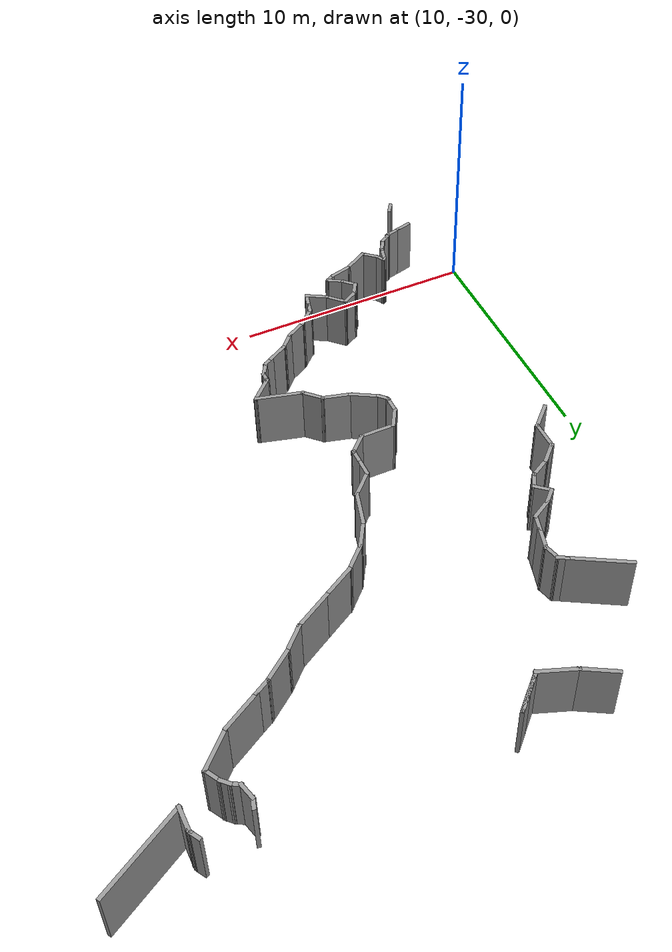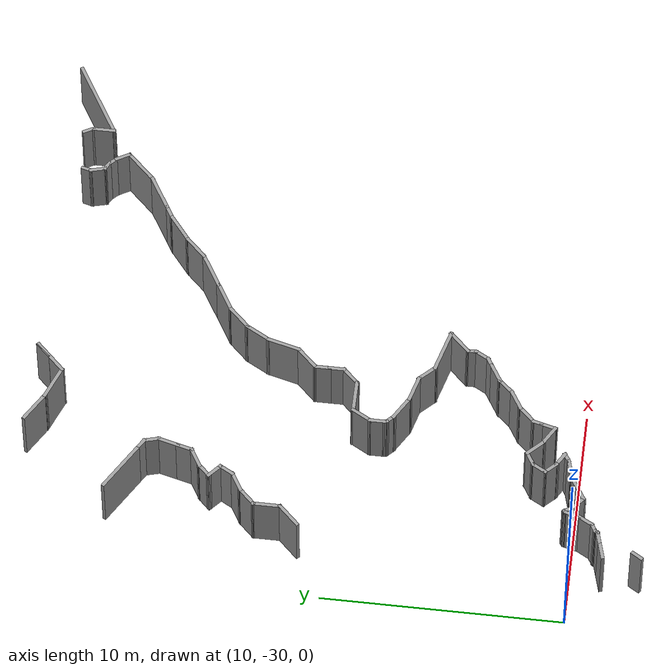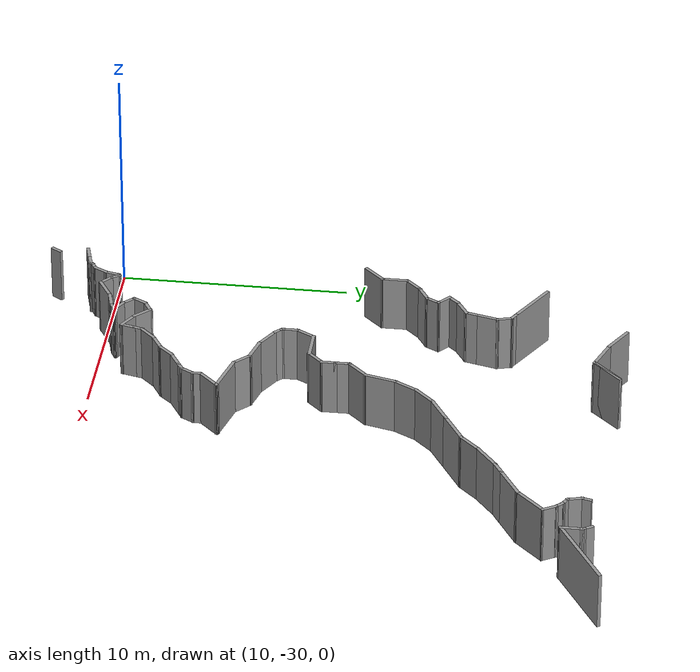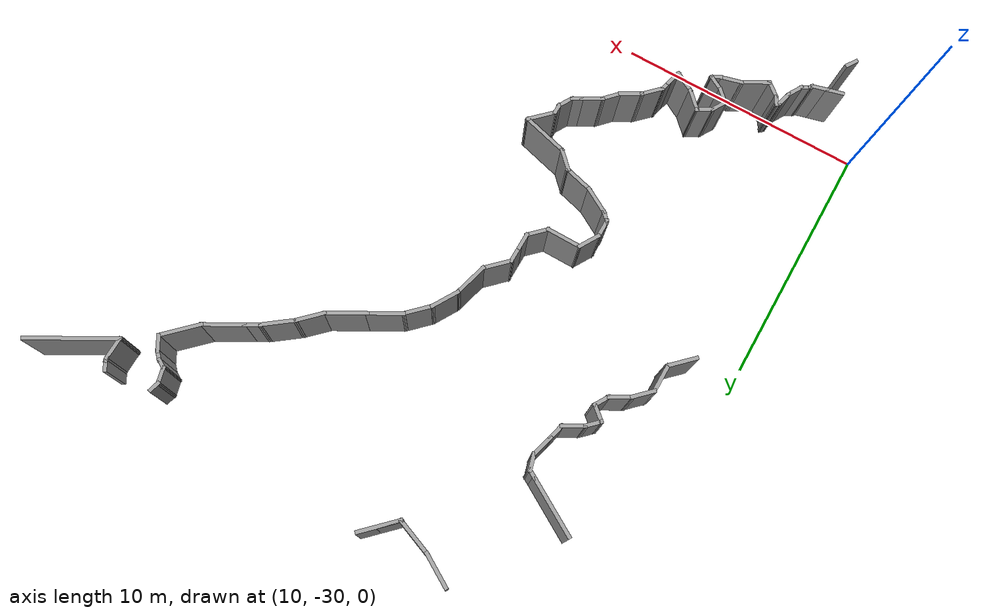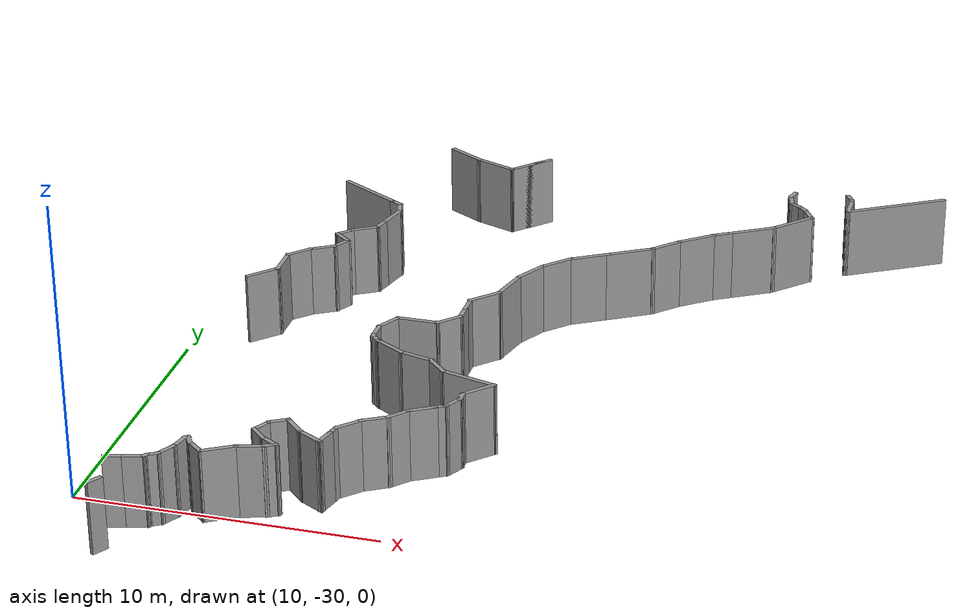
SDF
<sdf version="1.7">
 <model name="office_track1">
  <pose>2.3626 4.43866 0 0 -0 0</pose>
  <link name="Wall_157">
   <collision name="Wall_157_Collision">
    <geometry><box><size>1.25 0.15 2.5</size></box></geometry>
    <pose>0 0 1.25 0 -0 0</pose>
   </collision>
   <visual name="Wall_157_Visual">
    <pose>0 0 1.25 0 -0 0</pose>
    <geometry><box><size>1.25 0.15 2.5</size></box></geometry>
    <material>
     <script><uri>file://media/materials/scripts/gazebo.material</uri><name>Gazebo/Grey</name></script>
     <ambient>1 1 1 1</ambient>
    </material>
    <meta><layer>0</layer></meta>
   </visual>
   <pose>9.8922 -22.9119 0 0 -0 0.785398</pose>
  </link>
  <link name="Wall_158">
   <collision name="Wall_158_Collision">
    <geometry><box><size>1.25 0.15 2.5</size></box></geometry>
    <pose>0 0 1.25 0 -0 0</pose>
   </collision>
   <visual name="Wall_158_Visual">
    <pose>0 0 1.25 0 -0 0</pose>
    <geometry><box><size>1.25 0.15 2.5</size></box></geometry>
    <material>
     <script><uri>file://media/materials/scripts/gazebo.material</uri><name>Gazebo/Grey</name></script>
     <ambient>1 1 1 1</ambient>
    </material>
    <meta><layer>0</layer></meta>
   </visual>
   <pose>10.2811 -21.973 0 0 -0 1.5708</pose>
  </link>
  <link name="Wall_159">
   <collision name="Wall_159_Collision">
    <geometry><box><size>1 0.15 2.5</size></box></geometry>
    <pose>0 0 1.25 0 -0 0</pose>
   </collision>
   <visual name="Wall_159_Visual">
    <pose>0 0 1.25 0 -0 0</pose>
    <geometry><box><size>1 0.15 2.5</size></box></geometry>
    <material>
     <script><uri>file://media/materials/scripts/gazebo.material</uri><name>Gazebo/Grey</name></script>
     <ambient>1 1 1 1</ambient>
    </material>
    <meta><layer>0</layer></meta>
   </visual>
   <pose>10.5816 -21.1225 0 0 -0 0.785398</pose>
  </link>
  <link name="Wall_160">
   <collision name="Wall_160_Collision">
    <geometry><box><size>1 0.15 2.5</size></box></geometry>
    <pose>0 0 1.25 0 -0 0</pose>
   </collision>
   <visual name="Wall_160_Visual">
    <pose>0 0 1.25 0 -0 0</pose>
    <geometry><box><size>1 0.15 2.5</size></box></geometry>
    <material>
     <script><uri>file://media/materials/scripts/gazebo.material</uri><name>Gazebo/Grey</name></script>
     <ambient>1 1 1 1</ambient>
    </material>
    <meta><layer>0</layer></meta>
   </visual>
   <pose>11.2502 -20.6094 0 0 -0 0.523599</pose>
  </link>
  <link name="Wall_161">
   <collision name="Wall_161_Collision">
    <geometry><box><size>0.75 0.15 2.5</size></box></geometry>
    <pose>0 0 1.25 0 -0 0</pose>
   </collision>
   <visual name="Wall_161_Visual">
    <pose>0 0 1.25 0 -0 0</pose>
    <geometry><box><size>0.75 0.15 2.5</size></box></geometry>
    <material>
     <script><uri>file://media/materials/scripts/gazebo.material</uri><name>Gazebo/Grey</name></script>
     <ambient>1 1 1 1</ambient>
    </material>
    <meta><layer>0</layer></meta>
   </visual>
   <pose>11.7683 -20.1371 0 0 -0 1.0472</pose>
  </link>
  <link name="Wall_163">
   <collision name="Wall_163_Collision">
    <geometry><box><size>2.5 0.15 2.5</size></box></geometry>
    <pose>0 0 1.25 0 -0 0</pose>
   </collision>
   <visual name="Wall_163_Visual">
    <pose>0 0 1.25 0 -0 0</pose>
    <geometry><box><size>2.5 0.15 2.5</size></box></geometry>
    <material>
     <script><uri>file://media/materials/scripts/gazebo.material</uri><name>Gazebo/Grey</name></script>
     <ambient>1 1 1 1</ambient>
    </material>
    <meta><layer>0</layer></meta>
   </visual>
   <pose>11.4842 -15.8572 0 0 -0 -0.523599</pose>
  </link>
  <link name="Wall_164">
   <collision name="Wall_164_Collision">
    <geometry><box><size>0.5 0.15 2.5</size></box></geometry>
    <pose>0 0 1.25 0 -0 0</pose>
   </collision>
   <visual name="Wall_164_Visual">
    <pose>0 0 1.25 0 -0 0</pose>
    <geometry><box><size>0.5 0.15 2.5</size></box></geometry>
    <material>
     <script><uri>file://media/materials/scripts/gazebo.material</uri><name>Gazebo/Grey</name></script>
     <ambient>1 1 1 1</ambient>
    </material>
    <meta><layer>0</layer></meta>
   </visual>
   <pose>12.6533 -16.5322 0 0 -0 -0.523599</pose>
  </link>
  <link name="Wall_165">
   <collision name="Wall_165_Collision">
    <geometry><box><size>0.75 0.15 2.5</size></box></geometry>
    <pose>0 0 1.25 0 -0 0</pose>
   </collision>
   <visual name="Wall_165_Visual">
    <pose>0 0 1.25 0 -0 0</pose>
    <geometry><box><size>0.75 0.15 2.5</size></box></geometry>
    <material>
     <script><uri>file://media/materials/scripts/gazebo.material</uri><name>Gazebo/Grey</name></script>
     <ambient>1 1 1 1</ambient>
    </material>
    <meta><layer>0</layer></meta>
   </visual>
   <pose>12.8825 -16.9095 0 0 -0 -1.309</pose>
  </link>
  <link name="Wall_166">
   <collision name="Wall_166_Collision">
    <geometry><box><size>1 0.15 2.5</size></box></geometry>
    <pose>0 0 1.25 0 -0 0</pose>
   </collision>
   <visual name="Wall_166_Visual">
    <pose>0 0 1.25 0 -0 0</pose>
    <geometry><box><size>1 0.15 2.5</size></box></geometry>
    <material>
     <script><uri>file://media/materials/scripts/gazebo.material</uri><name>Gazebo/Grey</name></script>
     <ambient>1 1 1 1</ambient>
    </material>
    <meta><layer>0</layer></meta>
   </visual>
   <pose>12.8502 -17.6098 0 0 -0 -1.8326</pose>
  </link>
  <link name="Wall_167">
   <collision name="Wall_167_Collision">
    <geometry><box><size>0.75 0.15 2.5</size></box></geometry>
    <pose>0 0 1.25 0 -0 0</pose>
   </collision>
   <visual name="Wall_167_Visual">
    <pose>0 0 1.25 0 -0 0</pose>
    <geometry><box><size>0.75 0.15 2.5</size></box></geometry>
    <material>
     <script><uri>file://media/materials/scripts/gazebo.material</uri><name>Gazebo/Grey</name></script>
     <ambient>1 1 1 1</ambient>
    </material>
    <meta><layer>0</layer></meta>
   </visual>
   <pose>12.6625 -18.3101 0 0 -0 -1.8326</pose>
  </link>
  <link name="Wall_168">
   <collision name="Wall_168_Collision">
    <geometry><box><size>1 0.15 2.5</size></box></geometry>
    <pose>0 0 1.25 0 -0 0</pose>
   </collision>
   <visual name="Wall_168_Visual">
    <pose>0 0 1.25 0 -0 0</pose>
    <geometry><box><size>1 0.15 2.5</size></box></geometry>
    <material>
     <script><uri>file://media/materials/scripts/gazebo.material</uri><name>Gazebo/Grey</name></script>
     <ambient>1 1 1 1</ambient>
    </material>
    <meta><layer>0</layer></meta>
   </visual>
   <pose>12.2168 -18.8124 0 0 -0 -2.61799</pose>
  </link>
  <link name="Wall_169">
   <collision name="Wall_169_Collision">
    <geometry><box><size>0.75 0.15 2.5</size></box></geometry>
    <pose>0 0 1.25 0 -0 0</pose>
   </collision>
   <visual name="Wall_169_Visual">
    <pose>0 0 1.25 0 -0 0</pose>
    <geometry><box><size>0.75 0.15 2.5</size></box></geometry>
    <material>
     <script><uri>file://media/materials/scripts/gazebo.material</uri><name>Gazebo/Grey</name></script>
     <ambient>1 1 1 1</ambient>
    </material>
    <meta><layer>0</layer></meta>
   </visual>
   <pose>11.6366 -19.237 0 0 -0 -2.35619</pose>
  </link>
  <link name="Wall_170">
   <collision name="Wall_170_Collision">
    <geometry><box><size>0.803548 0.15 2.5</size></box></geometry>
    <pose>0 0 1.25 0 -0 0</pose>
   </collision>
   <visual name="Wall_170_Visual">
    <pose>0 0 1.25 0 -0 0</pose>
    <geometry><box><size>0.803548 0.15 2.5</size></box></geometry>
    <material>
     <script><uri>file://media/materials/scripts/gazebo.material</uri><name>Gazebo/Grey</name></script>
     <ambient>1 1 1 1</ambient>
    </material>
    <meta><layer>0</layer></meta>
   </visual>
   <pose>11.6714 -19.6632 0 0 -0 -0.714368</pose>
  </link>
  <link name="Wall_176">
   <collision name="Wall_176_Collision">
    <geometry><box><size>1.75 0.15 2.5</size></box></geometry>
    <pose>0 0 1.25 0 -0 0</pose>
   </collision>
   <visual name="Wall_176_Visual">
    <pose>0 0 1.25 0 -0 0</pose>
    <geometry><box><size>1.75 0.15 2.5</size></box></geometry>
    <material>
     <script><uri>file://media/materials/scripts/gazebo.material</uri><name>Gazebo/Grey</name></script>
     <ambient>1 1 1 1</ambient>
    </material>
    <meta><layer>0</layer></meta>
   </visual>
   <pose>16.4542 -12.203 0 0 -0 0.785398</pose>
  </link>
  <link name="Wall_181">
   <collision name="Wall_181_Collision">
    <geometry><box><size>1.5 0.15 2.5</size></box></geometry>
    <pose>0 0 1.25 0 -0 0</pose>
   </collision>
   <visual name="Wall_181_Visual">
    <pose>0 0 1.25 0 -0 0</pose>
    <geometry><box><size>1.5 0.15 2.5</size></box></geometry>
    <material>
     <script><uri>file://media/materials/scripts/gazebo.material</uri><name>Gazebo/Grey</name></script>
     <ambient>1 1 1 1</ambient>
    </material>
    <meta><layer>0</layer></meta>
   </visual>
   <pose>13.9348 -11.9171 0 0 -0 -0.523599</pose>
  </link>
  <link name="Wall_182">
   <collision name="Wall_182_Collision">
    <geometry><box><size>1.61252 0.15 2.5</size></box></geometry>
    <pose>0 0 1.25 0 -0 0</pose>
   </collision>
   <visual name="Wall_182_Visual">
    <pose>0 0 1.25 0 -0 0</pose>
    <geometry><box><size>1.61252 0.15 2.5</size></box></geometry>
    <material>
     <script><uri>file://media/materials/scripts/gazebo.material</uri><name>Gazebo/Grey</name></script>
     <ambient>1 1 1 1</ambient>
    </material>
    <meta><layer>0</layer></meta>
   </visual>
   <pose>15.2039 -12.5116 0 0 -0 -0.359135</pose>
  </link>
  <link name="Wall_189">
   <collision name="Wall_189_Collision">
    <geometry><box><size>1.75 0.15 2.5</size></box></geometry>
    <pose>0 0 1.25 0 -0 0</pose>
   </collision>
   <visual name="Wall_189_Visual">
    <pose>0 0 1.25 0 -0 0</pose>
    <geometry><box><size>1.75 0.15 2.5</size></box></geometry>
    <material>
     <script><uri>file://media/materials/scripts/gazebo.material</uri><name>Gazebo/Grey</name></script>
     <ambient>1 1 1 1</ambient>
    </material>
    <meta><layer>0</layer></meta>
   </visual>
   <pose>16.4542 -12.203 0 0 -0 -2.35619</pose>
  </link>
  <link name="Wall_358">
   <collision name="Wall_358_Collision">
    <geometry><box><size>3.75 0.15 2.5</size></box></geometry>
    <pose>0 0 1.25 0 -0 0</pose>
   </collision>
   <visual name="Wall_358_Visual">
    <pose>0 0 1.25 0 -0 0</pose>
    <geometry><box><size>3.75 0.15 2.5</size></box></geometry>
    <material>
     <script><uri>file://media/materials/scripts/gazebo.material</uri><name>Gazebo/Grey</name></script>
     <ambient>1 1 1 1</ambient>
    </material>
    <meta><layer>0</layer></meta>
   </visual>
   <pose>29.8467 -12.2922 0 0 -0 -2.61799</pose>
  </link>
  <link name="Wall_359">
   <collision name="Wall_359_Collision">
    <geometry><box><size>1 0.15 2.5</size></box></geometry>
    <pose>0 0 1.25 0 -0 0</pose>
   </collision>
   <visual name="Wall_359_Visual">
    <pose>0 0 1.25 0 -0 0</pose>
    <geometry><box><size>1 0.15 2.5</size></box></geometry>
    <material>
     <script><uri>file://media/materials/scripts/gazebo.material</uri><name>Gazebo/Grey</name></script>
     <ambient>1 1 1 1</ambient>
    </material>
    <meta><layer>0</layer></meta>
   </visual>
   <pose>28.2878 -12.7672 0 0 -0 1.5708</pose>
  </link>
  <link name="Wall_360">
   <collision name="Wall_360_Collision">
    <geometry><box><size>0.25 0.15 2.5</size></box></geometry>
    <pose>0 0 1.25 0 -0 0</pose>
   </collision>
   <visual name="Wall_360_Visual">
    <pose>0 0 1.25 0 -0 0</pose>
    <geometry><box><size>0.25 0.15 2.5</size></box></geometry>
    <material>
     <script><uri>file://media/materials/scripts/gazebo.material</uri><name>Gazebo/Grey</name></script>
     <ambient>1 1 1 1</ambient>
    </material>
    <meta><layer>0</layer></meta>
   </visual>
   <pose>28.2749 -12.294 0 0 -0 1.8326</pose>
  </link>
  <link name="Wall_361">
   <collision name="Wall_361_Collision">
    <geometry><box><size>0.5 0.15 2.5</size></box></geometry>
    <pose>0 0 1.25 0 -0 0</pose>
   </collision>
   <visual name="Wall_361_Visual">
    <pose>0 0 1.25 0 -0 0</pose>
    <geometry><box><size>0.5 0.15 2.5</size></box></geometry>
    <material>
     <script><uri>file://media/materials/scripts/gazebo.material</uri><name>Gazebo/Grey</name></script>
     <ambient>1 1 1 1</ambient>
    </material>
    <meta><layer>0</layer></meta>
   </visual>
   <pose>28.1745 -12.0941 0 0 -0 2.0944</pose>
  </link>
  <link name="Wall_366">
   <collision name="Wall_366_Collision">
    <geometry><box><size>0.5 0.15 2.5</size></box></geometry>
    <pose>0 0 1.25 0 -0 0</pose>
   </collision>
   <visual name="Wall_366_Visual">
    <pose>0 0 1.25 0 -0 0</pose>
    <geometry><box><size>0.5 0.15 2.5</size></box></geometry>
    <material>
     <script><uri>file://media/materials/scripts/gazebo.material</uri><name>Gazebo/Grey</name></script>
     <ambient>1 1 1 1</ambient>
    </material>
    <meta><layer>0</layer></meta>
   </visual>
   <pose>26.1583 -12.3363 0 0 -0 -1.8326</pose>
  </link>
  <link name="Wall_367">
   <collision name="Wall_367_Collision">
    <geometry><box><size>0.75 0.15 2.5</size></box></geometry>
    <pose>0 0 1.25 0 -0 0</pose>
   </collision>
   <visual name="Wall_367_Visual">
    <pose>0 0 1.25 0 -0 0</pose>
    <geometry><box><size>0.75 0.15 2.5</size></box></geometry>
    <material>
     <script><uri>file://media/materials/scripts/gazebo.material</uri><name>Gazebo/Grey</name></script>
     <ambient>1 1 1 1</ambient>
    </material>
    <meta><layer>0</layer></meta>
   </visual>
   <pose>26.1907 -12.7952 0 0 -0 -1.309</pose>
  </link>
  <link name="Wall_368">
   <collision name="Wall_368_Collision">
    <geometry><box><size>0.5 0.15 2.5</size></box></geometry>
    <pose>0 0 1.25 0 -0 0</pose>
   </collision>
   <visual name="Wall_368_Visual">
    <pose>0 0 1.25 0 -0 0</pose>
    <geometry><box><size>0.5 0.15 2.5</size></box></geometry>
    <material>
     <script><uri>file://media/materials/scripts/gazebo.material</uri><name>Gazebo/Grey</name></script>
     <ambient>1 1 1 1</ambient>
    </material>
    <meta><layer>0</layer></meta>
   </visual>
   <pose>26.4199 -13.1724 0 0 -0 -0.523599</pose>
  </link>
  <link name="Wall_369">
   <collision name="Wall_369_Collision">
    <geometry><box><size>0.5 0.15 2.5</size></box></geometry>
    <pose>0 0 1.25 0 -0 0</pose>
   </collision>
   <visual name="Wall_369_Visual">
    <pose>0 0 1.25 0 -0 0</pose>
    <geometry><box><size>0.5 0.15 2.5</size></box></geometry>
    <material>
     <script><uri>file://media/materials/scripts/gazebo.material</uri><name>Gazebo/Grey</name></script>
     <ambient>1 1 1 1</ambient>
    </material>
    <meta><layer>0</layer></meta>
   </visual>
   <pose>26.6952 -13.3837 0 0 -0 -0.785398</pose>
  </link>
  <link name="Wall_371">
   <collision name="Wall_371_Collision">
    <geometry><box><size>0.75 0.15 2.5</size></box></geometry>
    <pose>0 0 1.25 0 -0 0</pose>
   </collision>
   <visual name="Wall_371_Visual">
    <pose>0 0 1.25 0 -0 0</pose>
    <geometry><box><size>0.75 0.15 2.5</size></box></geometry>
    <material>
     <script><uri>file://media/materials/scripts/gazebo.material</uri><name>Gazebo/Grey</name></script>
     <ambient>1 1 1 1</ambient>
    </material>
    <meta><layer>0</layer></meta>
   </visual>
   <pose>26.9689 -13.7672 0 0 -0 -1.0472</pose>
  </link>
  <link name="Wall_372">
   <collision name="Wall_372_Collision">
    <geometry><box><size>1.75 0.15 2.5</size></box></geometry>
    <pose>0 0 1.25 0 -0 0</pose>
   </collision>
   <visual name="Wall_372_Visual">
    <pose>0 0 1.25 0 -0 0</pose>
    <geometry><box><size>1.75 0.15 2.5</size></box></geometry>
    <material>
     <script><uri>file://media/materials/scripts/gazebo.material</uri><name>Gazebo/Grey</name></script>
     <ambient>1 1 1 1</ambient>
    </material>
    <meta><layer>0</layer></meta>
   </visual>
   <pose>26.5532 -14.5927 0 0 -0 -2.35619</pose>
  </link>
  <link name="Wall_373">
   <collision name="Wall_373_Collision">
    <geometry><box><size>1.75 0.15 2.5</size></box></geometry>
    <pose>0 0 1.25 0 -0 0</pose>
   </collision>
   <visual name="Wall_373_Visual">
    <pose>0 0 1.25 0 -0 0</pose>
    <geometry><box><size>1.75 0.15 2.5</size></box></geometry>
    <material>
     <script><uri>file://media/materials/scripts/gazebo.material</uri><name>Gazebo/Grey</name></script>
     <ambient>1 1 1 1</ambient>
    </material>
    <meta><layer>0</layer></meta>
   </visual>
   <pose>25.2947 -15.5584 0 0 -0 -2.61799</pose>
  </link>
  <link name="Wall_374">
   <collision name="Wall_374_Collision">
    <geometry><box><size>0.75 0.15 2.5</size></box></geometry>
    <pose>0 0 1.25 0 -0 0</pose>
   </collision>
   <visual name="Wall_374_Visual">
    <pose>0 0 1.25 0 -0 0</pose>
    <geometry><box><size>0.75 0.15 2.5</size></box></geometry>
    <material>
     <script><uri>file://media/materials/scripts/gazebo.material</uri><name>Gazebo/Grey</name></script>
     <ambient>1 1 1 1</ambient>
    </material>
    <meta><layer>0</layer></meta>
   </visual>
   <pose>24.3421 -16.1084 0 0 -0 -2.61799</pose>
  </link>
  <link name="Wall_376">
   <collision name="Wall_376_Collision">
    <geometry><box><size>1.5 0.15 2.5</size></box></geometry>
    <pose>0 0 1.25 0 -0 0</pose>
   </collision>
   <visual name="Wall_376_Visual">
    <pose>0 0 1.25 0 -0 0</pose>
    <geometry><box><size>1.5 0.15 2.5</size></box></geometry>
    <material>
     <script><uri>file://media/materials/scripts/gazebo.material</uri><name>Gazebo/Grey</name></script>
     <ambient>1 1 1 1</ambient>
    </material>
    <meta><layer>0</layer></meta>
   </visual>
   <pose>18.207 -21.6949 0 0 -0 1.309</pose>
  </link>
  <link name="Wall_377">
   <collision name="Wall_377_Collision">
    <geometry><box><size>1.25 0.15 2.5</size></box></geometry>
    <pose>0 0 1.25 0 -0 0</pose>
   </collision>
   <visual name="Wall_377_Visual">
    <pose>0 0 1.25 0 -0 0</pose>
    <geometry><box><size>1.25 0.15 2.5</size></box></geometry>
    <material>
     <script><uri>file://media/materials/scripts/gazebo.material</uri><name>Gazebo/Grey</name></script>
     <ambient>1 1 1 1</ambient>
    </material>
    <meta><layer>0</layer></meta>
   </visual>
   <pose>18.6567 -20.5666 0 0 -0 1.0472</pose>
  </link>
  <link name="Wall_378">
   <collision name="Wall_378_Collision">
    <geometry><box><size>1.25 0.15 2.5</size></box></geometry>
    <pose>0 0 1.25 0 -0 0</pose>
   </collision>
   <visual name="Wall_378_Visual">
    <pose>0 0 1.25 0 -0 0</pose>
    <geometry><box><size>1.25 0.15 2.5</size></box></geometry>
    <material>
     <script><uri>file://media/materials/scripts/gazebo.material</uri><name>Gazebo/Grey</name></script>
     <ambient>1 1 1 1</ambient>
    </material>
    <meta><layer>0</layer></meta>
   </visual>
   <pose>19.3206 -19.7014 0 0 -0 0.785398</pose>
  </link>
  <link name="Wall_379">
   <collision name="Wall_379_Collision">
    <geometry><box><size>1.5 0.15 2.5</size></box></geometry>
    <pose>0 0 1.25 0 -0 0</pose>
   </collision>
   <visual name="Wall_379_Visual">
    <pose>0 0 1.25 0 -0 0</pose>
    <geometry><box><size>1.5 0.15 2.5</size></box></geometry>
    <material>
     <script><uri>file://media/materials/scripts/gazebo.material</uri><name>Gazebo/Grey</name></script>
     <ambient>1 1 1 1</ambient>
    </material>
    <meta><layer>0</layer></meta>
   </visual>
   <pose>20.294 -18.975 0 0 -0 0.523599</pose>
  </link>
  <link name="Wall_380">
   <collision name="Wall_380_Collision">
    <geometry><box><size>1.75 0.15 2.5</size></box></geometry>
    <pose>0 0 1.25 0 -0 0</pose>
   </collision>
   <visual name="Wall_380_Visual">
    <pose>0 0 1.25 0 -0 0</pose>
    <geometry><box><size>1.75 0.15 2.5</size></box></geometry>
    <material>
     <script><uri>file://media/materials/scripts/gazebo.material</uri><name>Gazebo/Grey</name></script>
     <ambient>1 1 1 1</ambient>
    </material>
    <meta><layer>0</layer></meta>
   </visual>
   <pose>21.5714 -18.2375 0 0 -0 0.523599</pose>
  </link>
  <link name="Wall_381">
   <collision name="Wall_381_Collision">
    <geometry><box><size>1.25 0.15 2.5</size></box></geometry>
    <pose>0 0 1.25 0 -0 0</pose>
   </collision>
   <visual name="Wall_381_Visual">
    <pose>0 0 1.25 0 -0 0</pose>
    <geometry><box><size>1.25 0.15 2.5</size></box></geometry>
    <material>
     <script><uri>file://media/materials/scripts/gazebo.material</uri><name>Gazebo/Grey</name></script>
     <ambient>1 1 1 1</ambient>
    </material>
    <meta><layer>0</layer></meta>
   </visual>
   <pose>22.6532 -17.4486 0 0 -0 0.785398</pose>
  </link>
  <link name="Wall_382">
   <collision name="Wall_382_Collision">
    <geometry><box><size>1.46302 0.15 2.5</size></box></geometry>
    <pose>0 0 1.25 0 -0 0</pose>
   </collision>
   <visual name="Wall_382_Visual">
    <pose>0 0 1.25 0 -0 0</pose>
    <geometry><box><size>1.46302 0.15 2.5</size></box></geometry>
    <material>
     <script><uri>file://media/materials/scripts/gazebo.material</uri><name>Gazebo/Grey</name></script>
     <ambient>1 1 1 1</ambient>
    </material>
    <meta><layer>0</layer></meta>
   </visual>
   <pose>23.5622 -16.659 0 0 -0 0.656355</pose>
  </link>
  <link name="Wall_384">
   <collision name="Wall_384_Collision">
    <geometry><box><size>1.25 0.15 2.5</size></box></geometry>
    <pose>0 0 1.25 0 -0 0</pose>
   </collision>
   <visual name="Wall_384_Visual">
    <pose>0 0 1.25 0 -0 0</pose>
    <geometry><box><size>1.25 0.15 2.5</size></box></geometry>
    <material>
     <script><uri>file://media/materials/scripts/gazebo.material</uri><name>Gazebo/Grey</name></script>
     <ambient>1 1 1 1</ambient>
    </material>
    <meta><layer>0</layer></meta>
   </visual>
   <pose>17.6433 -22.7358 0 0 -0 -2.35619</pose>
  </link>
  <link name="Wall_385">
   <collision name="Wall_385_Collision">
    <geometry><box><size>0.75 0.15 2.5</size></box></geometry>
    <pose>0 0 1.25 0 -0 0</pose>
   </collision>
   <visual name="Wall_385_Visual">
    <pose>0 0 1.25 0 -0 0</pose>
    <geometry><box><size>0.75 0.15 2.5</size></box></geometry>
    <material>
     <script><uri>file://media/materials/scripts/gazebo.material</uri><name>Gazebo/Grey</name></script>
     <ambient>1 1 1 1</ambient>
    </material>
    <meta><layer>0</layer></meta>
   </visual>
   <pose>17.2544 -23.4247 0 0 -0 -1.5708</pose>
  </link>
  <link name="Wall_386">
   <collision name="Wall_386_Collision">
    <geometry><box><size>0.75 0.15 2.5</size></box></geometry>
    <pose>0 0 1.25 0 -0 0</pose>
   </collision>
   <visual name="Wall_386_Visual">
    <pose>0 0 1.25 0 -0 0</pose>
    <geometry><box><size>0.75 0.15 2.5</size></box></geometry>
    <material>
     <script><uri>file://media/materials/scripts/gazebo.material</uri><name>Gazebo/Grey</name></script>
     <ambient>1 1 1 1</ambient>
    </material>
    <meta><layer>0</layer></meta>
   </visual>
   <pose>17.2544 -24.0247 0 0 -0 -1.5708</pose>
  </link>
  <link name="Wall_387">
   <collision name="Wall_387_Collision">
    <geometry><box><size>1 0.15 2.5</size></box></geometry>
    <pose>0 0 1.25 0 -0 0</pose>
   </collision>
   <visual name="Wall_387_Visual">
    <pose>0 0 1.25 0 -0 0</pose>
    <geometry><box><size>1 0.15 2.5</size></box></geometry>
    <material>
     <script><uri>file://media/materials/scripts/gazebo.material</uri><name>Gazebo/Grey</name></script>
     <ambient>1 1 1 1</ambient>
    </material>
    <meta><layer>0</layer></meta>
   </visual>
   <pose>16.9539 -24.6253 0 0 -0 -2.35619</pose>
  </link>
  <link name="Wall_388">
   <collision name="Wall_388_Collision">
    <geometry><box><size>1.5 0.15 2.5</size></box></geometry>
    <pose>0 0 1.25 0 -0 0</pose>
   </collision>
   <visual name="Wall_388_Visual">
    <pose>0 0 1.25 0 -0 0</pose>
    <geometry><box><size>1.5 0.15 2.5</size></box></geometry>
    <material>
     <script><uri>file://media/materials/scripts/gazebo.material</uri><name>Gazebo/Grey</name></script>
     <ambient>1 1 1 1</ambient>
    </material>
    <meta><layer>0</layer></meta>
   </visual>
   <pose>15.9784 -24.9258 0 0 -0 3.14159</pose>
  </link>
  <link name="Wall_389">
   <collision name="Wall_389_Collision">
    <geometry><box><size>1 0.15 2.5</size></box></geometry>
    <pose>0 0 1.25 0 -0 0</pose>
   </collision>
   <visual name="Wall_389_Visual">
    <pose>0 0 1.25 0 -0 0</pose>
    <geometry><box><size>1 0.15 2.5</size></box></geometry>
    <material>
     <script><uri>file://media/materials/scripts/gazebo.material</uri><name>Gazebo/Grey</name></script>
     <ambient>1 1 1 1</ambient>
    </material>
    <meta><layer>0</layer></meta>
   </visual>
   <pose>15.0909 -25.2938 0 0 -0 -2.0944</pose>
  </link>
  <link name="Wall_390">
   <collision name="Wall_390_Collision">
    <geometry><box><size>0.75 0.15 2.5</size></box></geometry>
    <pose>0 0 1.25 0 -0 0</pose>
   </collision>
   <visual name="Wall_390_Visual">
    <pose>0 0 1.25 0 -0 0</pose>
    <geometry><box><size>0.75 0.15 2.5</size></box></geometry>
    <material>
     <script><uri>file://media/materials/scripts/gazebo.material</uri><name>Gazebo/Grey</name></script>
     <ambient>1 1 1 1</ambient>
    </material>
    <meta><layer>0</layer></meta>
   </visual>
   <pose>14.8784 -25.9619 0 0 -0 -1.5708</pose>
  </link>
  <link name="Wall_391">
   <collision name="Wall_391_Collision">
    <geometry><box><size>0.25 0.15 2.5</size></box></geometry>
    <pose>0 0 1.25 0 -0 0</pose>
   </collision>
   <visual name="Wall_391_Visual">
    <pose>0 0 1.25 0 -0 0</pose>
    <geometry><box><size>0.25 0.15 2.5</size></box></geometry>
    <material>
     <script><uri>file://media/materials/scripts/gazebo.material</uri><name>Gazebo/Grey</name></script>
     <ambient>1 1 1 1</ambient>
    </material>
    <meta><layer>0</layer></meta>
   </visual>
   <pose>14.8913 -26.3102 0 0 -0 -1.309</pose>
  </link>
  <link name="Wall_392">
   <collision name="Wall_392_Collision">
    <geometry><box><size>0.5 0.15 2.5</size></box></geometry>
    <pose>0 0 1.25 0 -0 0</pose>
   </collision>
   <visual name="Wall_392_Visual">
    <pose>0 0 1.25 0 -0 0</pose>
    <geometry><box><size>0.5 0.15 2.5</size></box></geometry>
    <material>
     <script><uri>file://media/materials/scripts/gazebo.material</uri><name>Gazebo/Grey</name></script>
     <ambient>1 1 1 1</ambient>
    </material>
    <meta><layer>0</layer></meta>
   </visual>
   <pose>15.028 -26.4822 0 0 -0 -0.785398</pose>
  </link>
  <link name="Wall_393">
   <collision name="Wall_393_Collision">
    <geometry><box><size>1.25 0.15 2.5</size></box></geometry>
    <pose>0 0 1.25 0 -0 0</pose>
   </collision>
   <visual name="Wall_393_Visual">
    <pose>0 0 1.25 0 -0 0</pose>
    <geometry><box><size>1.25 0.15 2.5</size></box></geometry>
    <material>
     <script><uri>file://media/materials/scripts/gazebo.material</uri><name>Gazebo/Grey</name></script>
     <ambient>1 1 1 1</ambient>
    </material>
    <meta><layer>0</layer></meta>
   </visual>
   <pose>15.6281 -26.881 0 0 -0 -0.523599</pose>
  </link>
  <link name="Wall_394">
   <collision name="Wall_394_Collision">
    <geometry><box><size>1.25 0.15 2.5</size></box></geometry>
    <pose>0 0 1.25 0 -0 0</pose>
   </collision>
   <visual name="Wall_394_Visual">
    <pose>0 0 1.25 0 -0 0</pose>
    <geometry><box><size>1.25 0.15 2.5</size></box></geometry>
    <material>
     <script><uri>file://media/materials/scripts/gazebo.material</uri><name>Gazebo/Grey</name></script>
     <ambient>1 1 1 1</ambient>
    </material>
    <meta><layer>0</layer></meta>
   </visual>
   <pose>16.6356 -27.2983 0 0 -0 -0.261799</pose>
  </link>
  <link name="Wall_395">
   <collision name="Wall_395_Collision">
    <geometry><box><size>1 0.15 2.5</size></box></geometry>
    <pose>0 0 1.25 0 -0 0</pose>
   </collision>
   <visual name="Wall_395_Visual">
    <pose>0 0 1.25 0 -0 0</pose>
    <geometry><box><size>1 0.15 2.5</size></box></geometry>
    <material>
     <script><uri>file://media/materials/scripts/gazebo.material</uri><name>Gazebo/Grey</name></script>
     <ambient>1 1 1 1</ambient>
    </material>
    <meta><layer>0</layer></meta>
   </visual>
   <pose>17.4674 -27.7412 0 0 -0 -0.785398</pose>
  </link>
  <link name="Wall_396">
   <collision name="Wall_396_Collision">
    <geometry><box><size>2 0.15 2.5</size></box></geometry>
    <pose>0 0 1.25 0 -0 0</pose>
   </collision>
   <visual name="Wall_396_Visual">
    <pose>0 0 1.25 0 -0 0</pose>
    <geometry><box><size>2 0.15 2.5</size></box></geometry>
    <material>
     <script><uri>file://media/materials/scripts/gazebo.material</uri><name>Gazebo/Grey</name></script>
     <ambient>1 1 1 1</ambient>
    </material>
    <meta><layer>0</layer></meta>
   </visual>
   <pose>18.6614 -28.2811 0 0 -0 -0.261799</pose>
  </link>
  <link name="Wall_397">
   <collision name="Wall_397_Collision">
    <geometry><box><size>1.25 0.15 2.5</size></box></geometry>
    <pose>0 0 1.25 0 -0 0</pose>
   </collision>
   <visual name="Wall_397_Visual">
    <pose>0 0 1.25 0 -0 0</pose>
    <geometry><box><size>1.25 0.15 2.5</size></box></geometry>
    <material>
     <script><uri>file://media/materials/scripts/gazebo.material</uri><name>Gazebo/Grey</name></script>
     <ambient>1 1 1 1</ambient>
    </material>
    <meta><layer>0</layer></meta>
   </visual>
   <pose>19.166 -28.9094 0 0 -0 -2.35619</pose>
  </link>
  <link name="Wall_398">
   <collision name="Wall_398_Collision">
    <geometry><box><size>0.5 0.15 2.5</size></box></geometry>
    <pose>0 0 1.25 0 -0 0</pose>
   </collision>
   <visual name="Wall_398_Visual">
    <pose>0 0 1.25 0 -0 0</pose>
    <geometry><box><size>0.5 0.15 2.5</size></box></geometry>
    <material>
     <script><uri>file://media/materials/scripts/gazebo.material</uri><name>Gazebo/Grey</name></script>
     <ambient>1 1 1 1</ambient>
    </material>
    <meta><layer>0</layer></meta>
   </visual>
   <pose>18.7771 -29.4734 0 0 -0 -1.5708</pose>
  </link>
  <link name="Wall_399">
   <collision name="Wall_399_Collision">
    <geometry><box><size>0.75 0.15 2.5</size></box></geometry>
    <pose>0 0 1.25 0 -0 0</pose>
   </collision>
   <visual name="Wall_399_Visual">
    <pose>0 0 1.25 0 -0 0</pose>
    <geometry><box><size>0.75 0.15 2.5</size></box></geometry>
    <material>
     <script><uri>file://media/materials/scripts/gazebo.material</uri><name>Gazebo/Grey</name></script>
     <ambient>1 1 1 1</ambient>
    </material>
    <meta><layer>0</layer></meta>
   </visual>
   <pose>18.6271 -29.9082 0 0 -0 -2.0944</pose>
  </link>
  <link name="Wall_400">
   <collision name="Wall_400_Collision">
    <geometry><box><size>0.5 0.15 2.5</size></box></geometry>
    <pose>0 0 1.25 0 -0 0</pose>
   </collision>
   <visual name="Wall_400_Visual">
    <pose>0 0 1.25 0 -0 0</pose>
    <geometry><box><size>0.5 0.15 2.5</size></box></geometry>
    <material>
     <script><uri>file://media/materials/scripts/gazebo.material</uri><name>Gazebo/Grey</name></script>
     <ambient>1 1 1 1</ambient>
    </material>
    <meta><layer>0</layer></meta>
   </visual>
   <pose>18.3255 -30.2555 0 0 -0 -2.61799</pose>
  </link>
  <link name="Wall_401">
   <collision name="Wall_401_Collision">
    <geometry><box><size>1 0.15 2.5</size></box></geometry>
    <pose>0 0 1.25 0 -0 0</pose>
   </collision>
   <visual name="Wall_401_Visual">
    <pose>0 0 1.25 0 -0 0</pose>
    <geometry><box><size>1 0.15 2.5</size></box></geometry>
    <material>
     <script><uri>file://media/materials/scripts/gazebo.material</uri><name>Gazebo/Grey</name></script>
     <ambient>1 1 1 1</ambient>
    </material>
    <meta><layer>0</layer></meta>
   </visual>
   <pose>17.8059 -30.5555 0 0 -0 -2.61799</pose>
  </link>
  <link name="Wall_403">
   <collision name="Wall_403_Collision">
    <geometry><box><size>1.25 0.15 2.5</size></box></geometry>
    <pose>0 0 1.25 0 -0 0</pose>
   </collision>
   <visual name="Wall_403_Visual">
    <pose>0 0 1.25 0 -0 0</pose>
    <geometry><box><size>1.25 0.15 2.5</size></box></geometry>
    <material>
     <script><uri>file://media/materials/scripts/gazebo.material</uri><name>Gazebo/Grey</name></script>
     <ambient>1 1 1 1</ambient>
    </material>
    <meta><layer>0</layer></meta>
   </visual>
   <pose>12.5445 -34.4374 0 0 -0 0.523599</pose>
  </link>
  <link name="Wall_404">
   <collision name="Wall_404_Collision">
    <geometry><box><size>1 0.15 2.5</size></box></geometry>
    <pose>0 0 1.25 0 -0 0</pose>
   </collision>
   <visual name="Wall_404_Visual">
    <pose>0 0 1.25 0 -0 0</pose>
    <geometry><box><size>1 0.15 2.5</size></box></geometry>
    <material>
     <script><uri>file://media/materials/scripts/gazebo.material</uri><name>Gazebo/Grey</name></script>
     <ambient>1 1 1 1</ambient>
    </material>
    <meta><layer>0</layer></meta>
   </visual>
   <pose>13.4313 -34.0524 0 0 -0 0.261799</pose>
  </link>
  <link name="Wall_405">
   <collision name="Wall_405_Collision">
    <geometry><box><size>0.5 0.15 2.5</size></box></geometry>
    <pose>0 0 1.25 0 -0 0</pose>
   </collision>
   <visual name="Wall_405_Visual">
    <pose>0 0 1.25 0 -0 0</pose>
    <geometry><box><size>0.5 0.15 2.5</size></box></geometry>
    <material>
     <script><uri>file://media/materials/scripts/gazebo.material</uri><name>Gazebo/Grey</name></script>
     <ambient>1 1 1 1</ambient>
    </material>
    <meta><layer>0</layer></meta>
   </visual>
   <pose>13.9934 -33.8549 0 0 -0 0.523599</pose>
  </link>
  <link name="Wall_406">
   <collision name="Wall_406_Collision">
    <geometry><box><size>0.75 0.15 2.5</size></box></geometry>
    <pose>0 0 1.25 0 -0 0</pose>
   </collision>
   <visual name="Wall_406_Visual">
    <pose>0 0 1.25 0 -0 0</pose>
    <geometry><box><size>0.75 0.15 2.5</size></box></geometry>
    <material>
     <script><uri>file://media/materials/scripts/gazebo.material</uri><name>Gazebo/Grey</name></script>
     <ambient>1 1 1 1</ambient>
    </material>
    <meta><layer>0</layer></meta>
   </visual>
   <pose>13.8851 -33.6174 0 0 -0 2.61799</pose>
  </link>
  <link name="Wall_407">
   <collision name="Wall_407_Collision">
    <geometry><box><size>0.75 0.15 2.5</size></box></geometry>
    <pose>0 0 1.25 0 -0 0</pose>
   </collision>
   <visual name="Wall_407_Visual">
    <pose>0 0 1.25 0 -0 0</pose>
    <geometry><box><size>0.75 0.15 2.5</size></box></geometry>
    <material>
     <script><uri>file://media/materials/scripts/gazebo.material</uri><name>Gazebo/Grey</name></script>
     <ambient>1 1 1 1</ambient>
    </material>
    <meta><layer>0</layer></meta>
   </visual>
   <pose>13.4132 -33.2553 0 0 -0 2.35619</pose>
  </link>
  <link name="Wall_408">
   <collision name="Wall_408_Collision">
    <geometry><box><size>0.75 0.15 2.5</size></box></geometry>
    <pose>0 0 1.25 0 -0 0</pose>
   </collision>
   <visual name="Wall_408_Visual">
    <pose>0 0 1.25 0 -0 0</pose>
    <geometry><box><size>0.75 0.15 2.5</size></box></geometry>
    <material>
     <script><uri>file://media/materials/scripts/gazebo.material</uri><name>Gazebo/Grey</name></script>
     <ambient>1 1 1 1</ambient>
    </material>
    <meta><layer>0</layer></meta>
   </visual>
   <pose>13.351 -32.7833 0 0 -0 1.0472</pose>
  </link>
  <link name="Wall_409">
   <collision name="Wall_409_Collision">
    <geometry><box><size>0.75 0.15 2.5</size></box></geometry>
    <pose>0 0 1.25 0 -0 0</pose>
   </collision>
   <visual name="Wall_409_Visual">
    <pose>0 0 1.25 0 -0 0</pose>
    <geometry><box><size>0.75 0.15 2.5</size></box></geometry>
    <material>
     <script><uri>file://media/materials/scripts/gazebo.material</uri><name>Gazebo/Grey</name></script>
     <ambient>1 1 1 1</ambient>
    </material>
    <meta><layer>0</layer></meta>
   </visual>
   <pose>13.7608 -32.3735 0 0 -0 0.523599</pose>
  </link>
  <link name="Wall_410">
   <collision name="Wall_410_Collision">
    <geometry><box><size>1 0.15 2.5</size></box></geometry>
    <pose>0 0 1.25 0 -0 0</pose>
   </collision>
   <visual name="Wall_410_Visual">
    <pose>0 0 1.25 0 -0 0</pose>
    <geometry><box><size>1 0.15 2.5</size></box></geometry>
    <material>
     <script><uri>file://media/materials/scripts/gazebo.material</uri><name>Gazebo/Grey</name></script>
     <ambient>1 1 1 1</ambient>
    </material>
    <meta><layer>0</layer></meta>
   </visual>
   <pose>14.3212 -32.524 0 0 -0 -0.785398</pose>
  </link>
  <link name="Wall_411">
   <collision name="Wall_411_Collision">
    <geometry><box><size>1 0.15 2.5</size></box></geometry>
    <pose>0 0 1.25 0 -0 0</pose>
   </collision>
   <visual name="Wall_411_Visual">
    <pose>0 0 1.25 0 -0 0</pose>
    <geometry><box><size>1 0.15 2.5</size></box></geometry>
    <material>
     <script><uri>file://media/materials/scripts/gazebo.material</uri><name>Gazebo/Grey</name></script>
     <ambient>1 1 1 1</ambient>
    </material>
    <meta><layer>0</layer></meta>
   </visual>
   <pose>14.9898 -33.0371 0 0 -0 -0.523599</pose>
  </link>
  <link name="Wall_412">
   <collision name="Wall_412_Collision">
    <geometry><box><size>0.75 0.15 2.5</size></box></geometry>
    <pose>0 0 1.25 0 -0 0</pose>
   </collision>
   <visual name="Wall_412_Visual">
    <pose>0 0 1.25 0 -0 0</pose>
    <geometry><box><size>0.75 0.15 2.5</size></box></geometry>
    <material>
     <script><uri>file://media/materials/scripts/gazebo.material</uri><name>Gazebo/Grey</name></script>
     <ambient>1 1 1 1</ambient>
    </material>
    <meta><layer>0</layer></meta>
   </visual>
   <pose>15.4355 -32.9598 0 0 -0 1.309</pose>
  </link>
  <link name="Wall_413">
   <collision name="Wall_413_Collision">
    <geometry><box><size>0.5 0.15 2.5</size></box></geometry>
    <pose>0 0 1.25 0 -0 0</pose>
   </collision>
   <visual name="Wall_413_Visual">
    <pose>0 0 1.25 0 -0 0</pose>
    <geometry><box><size>0.5 0.15 2.5</size></box></geometry>
    <material>
     <script><uri>file://media/materials/scripts/gazebo.material</uri><name>Gazebo/Grey</name></script>
     <ambient>1 1 1 1</ambient>
    </material>
    <meta><layer>0</layer></meta>
   </visual>
   <pose>15.5584 -32.501 0 0 -0 1.309</pose>
  </link>
  <link name="Wall_414">
   <collision name="Wall_414_Collision">
    <geometry><box><size>1 0.15 2.5</size></box></geometry>
    <pose>0 0 1.25 0 -0 0</pose>
   </collision>
   <visual name="Wall_414_Visual">
    <pose>0 0 1.25 0 -0 0</pose>
    <geometry><box><size>1 0.15 2.5</size></box></geometry>
    <material>
     <script><uri>file://media/materials/scripts/gazebo.material</uri><name>Gazebo/Grey</name></script>
     <ambient>1 1 1 1</ambient>
    </material>
    <meta><layer>0</layer></meta>
   </visual>
   <pose>15.9042 -32.0314 0 0 -0 0.785398</pose>
  </link>
  <link name="Wall_415">
   <collision name="Wall_415_Collision">
    <geometry><box><size>1 0.15 2.5</size></box></geometry>
    <pose>0 0 1.25 0 -0 0</pose>
   </collision>
   <visual name="Wall_415_Visual">
    <pose>0 0 1.25 0 -0 0</pose>
    <geometry><box><size>1 0.15 2.5</size></box></geometry>
    <material>
     <script><uri>file://media/materials/scripts/gazebo.material</uri><name>Gazebo/Grey</name></script>
     <ambient>1 1 1 1</ambient>
    </material>
    <meta><layer>0</layer></meta>
   </visual>
   <pose>16.5728 -31.5184 0 0 -0 0.523599</pose>
  </link>
  <link name="Wall_416">
   <collision name="Wall_416_Collision">
    <geometry><box><size>0.882379 0.15 2.5</size></box></geometry>
    <pose>0 0 1.25 0 -0 0</pose>
   </collision>
   <visual name="Wall_416_Visual">
    <pose>0 0 1.25 0 -0 0</pose>
    <geometry><box><size>0.882379 0.15 2.5</size></box></geometry>
    <material>
     <script><uri>file://media/materials/scripts/gazebo.material</uri><name>Gazebo/Grey</name></script>
     <ambient>1 1 1 1</ambient>
    </material>
    <meta><layer>0</layer></meta>
   </visual>
   <pose>17.1894 -31.0369 0 0 -0 0.824905</pose>
  </link>
  <link name="Wall_420">
   <collision name="Wall_420_Collision">
    <geometry><box><size>0.75 0.15 2.5</size></box></geometry>
    <pose>0 0 1.25 0 -0 0</pose>
   </collision>
   <visual name="Wall_420_Visual">
    <pose>0 0 1.25 0 -0 0</pose>
    <geometry><box><size>0.75 0.15 2.5</size></box></geometry>
    <material>
     <script><uri>file://media/materials/scripts/gazebo.material</uri><name>Gazebo/Grey</name></script>
     <ambient>1 1 1 1</ambient>
    </material>
    <meta><layer>0</layer></meta>
   </visual>
   <pose>9.6607 -35.6539 0 0 -0 0.261799</pose>
  </link>
  <link name="Wall_421">
   <collision name="Wall_421_Collision">
    <geometry><box><size>0.75 0.15 2.5</size></box></geometry>
    <pose>0 0 1.25 0 -0 0</pose>
   </collision>
   <visual name="Wall_421_Visual">
    <pose>0 0 1.25 0 -0 0</pose>
    <geometry><box><size>0.75 0.15 2.5</size></box></geometry>
    <material>
     <script><uri>file://media/materials/scripts/gazebo.material</uri><name>Gazebo/Grey</name></script>
     <ambient>1 1 1 1</ambient>
    </material>
    <meta><layer>0</layer></meta>
   </visual>
   <pose>10.2403 -35.4986 0 0 -0 0.261799</pose>
  </link>
  <link name="Wall_422">
   <collision name="Wall_422_Collision">
    <geometry><box><size>0.25 0.15 2.5</size></box></geometry>
    <pose>0 0 1.25 0 -0 0</pose>
   </collision>
   <visual name="Wall_422_Visual">
    <pose>0 0 1.25 0 -0 0</pose>
    <geometry><box><size>0.25 0.15 2.5</size></box></geometry>
    <material>
     <script><uri>file://media/materials/scripts/gazebo.material</uri><name>Gazebo/Grey</name></script>
     <ambient>1 1 1 1</ambient>
    </material>
    <meta><layer>0</layer></meta>
   </visual>
   <pose>10.555 -35.3777 0 0 -0 1.0472</pose>
  </link>
  <link name="Wall_423">
   <collision name="Wall_423_Collision">
    <geometry><box><size>0.5 0.15 2.5</size></box></geometry>
    <pose>0 0 1.25 0 -0 0</pose>
   </collision>
   <visual name="Wall_423_Visual">
    <pose>0 0 1.25 0 -0 0</pose>
    <geometry><box><size>0.5 0.15 2.5</size></box></geometry>
    <material>
     <script><uri>file://media/materials/scripts/gazebo.material</uri><name>Gazebo/Grey</name></script>
     <ambient>1 1 1 1</ambient>
    </material>
    <meta><layer>0</layer></meta>
   </visual>
   <pose>10.7316 -35.2469 0 0 -0 0.523599</pose>
  </link>
  <link name="Wall_424">
   <collision name="Wall_424_Collision">
    <geometry><box><size>0.75 0.15 2.5</size></box></geometry>
    <pose>0 0 1.25 0 -0 0</pose>
   </collision>
   <visual name="Wall_424_Visual">
    <pose>0 0 1.25 0 -0 0</pose>
    <geometry><box><size>0.75 0.15 2.5</size></box></geometry>
    <material>
     <script><uri>file://media/materials/scripts/gazebo.material</uri><name>Gazebo/Grey</name></script>
     <ambient>1 1 1 1</ambient>
    </material>
    <meta><layer>0</layer></meta>
   </visual>
   <pose>11.0331 -34.8996 0 0 -0 1.0472</pose>
  </link>
  <link name="Wall_425">
   <collision name="Wall_425_Collision">
    <geometry><box><size>0.75 0.15 2.5</size></box></geometry>
    <pose>0 0 1.25 0 -0 0</pose>
   </collision>
   <visual name="Wall_425_Visual">
    <pose>0 0 1.25 0 -0 0</pose>
    <geometry><box><size>0.75 0.15 2.5</size></box></geometry>
    <material>
     <script><uri>file://media/materials/scripts/gazebo.material</uri><name>Gazebo/Grey</name></script>
     <ambient>1 1 1 1</ambient>
    </material>
    <meta><layer>0</layer></meta>
   </visual>
   <pose>11.2608 -34.35 0 0 -0 1.309</pose>
  </link>
  <link name="Wall_426">
   <collision name="Wall_426_Collision">
    <geometry><box><size>0.25 0.15 2.5</size></box></geometry>
    <pose>0 0 1.25 0 -0 0</pose>
   </collision>
   <visual name="Wall_426_Visual">
    <pose>0 0 1.25 0 -0 0</pose>
    <geometry><box><size>0.25 0.15 2.5</size></box></geometry>
    <material>
     <script><uri>file://media/materials/scripts/gazebo.material</uri><name>Gazebo/Grey</name></script>
     <ambient>1 1 1 1</ambient>
    </material>
    <meta><layer>0</layer></meta>
   </visual>
   <pose>11.3738 -34.0248 0 0 -0 0.785398</pose>
  </link>
  <link name="Wall_427">
   <collision name="Wall_427_Collision">
    <geometry><box><size>0.5 0.15 2.5</size></box></geometry>
    <pose>0 0 1.25 0 -0 0</pose>
   </collision>
   <visual name="Wall_427_Visual">
    <pose>0 0 1.25 0 -0 0</pose>
    <geometry><box><size>0.5 0.15 2.5</size></box></geometry>
    <material>
     <script><uri>file://media/materials/scripts/gazebo.material</uri><name>Gazebo/Grey</name></script>
     <ambient>1 1 1 1</ambient>
    </material>
    <meta><layer>0</layer></meta>
   </visual>
   <pose>11.4966 -34.141 0 0 -0 -1.0472</pose>
  </link>
  <link name="Wall_428">
   <collision name="Wall_428_Collision">
    <geometry><box><size>0.790694 0.15 2.5</size></box></geometry>
    <pose>0 0 1.25 0 -0 0</pose>
   </collision>
   <visual name="Wall_428_Visual">
    <pose>0 0 1.25 0 -0 0</pose>
    <geometry><box><size>0.790694 0.15 2.5</size></box></geometry>
    <material>
     <script><uri>file://media/materials/scripts/gazebo.material</uri><name>Gazebo/Grey</name></script>
     <ambient>1 1 1 1</ambient>
    </material>
    <meta><layer>0</layer></meta>
   </visual>
   <pose>11.8261 -34.5025 0 0 -0 -0.714486</pose>
  </link>
  <link name="Wall_450">
   <collision name="Wall_450_Collision">
    <geometry><box><size>0.563699 0.15 2.5</size></box></geometry>
    <pose>0 0 1.25 0 -0 0</pose>
   </collision>
   <visual name="Wall_450_Visual">
    <pose>0 0 1.25 0 -0 0</pose>
    <geometry><box><size>0.563699 0.15 2.5</size></box></geometry>
    <material>
     <script><uri>file://media/materials/scripts/gazebo.material</uri><name>Gazebo/Grey</name></script>
     <ambient>1 1 1 1</ambient>
    </material>
    <meta><layer>0</layer></meta>
   </visual>
   <pose>9.61184 -37.1071 0 0 -0 0.995014</pose>
  </link>
  <static>1</static>
 </model>
</sdf>
